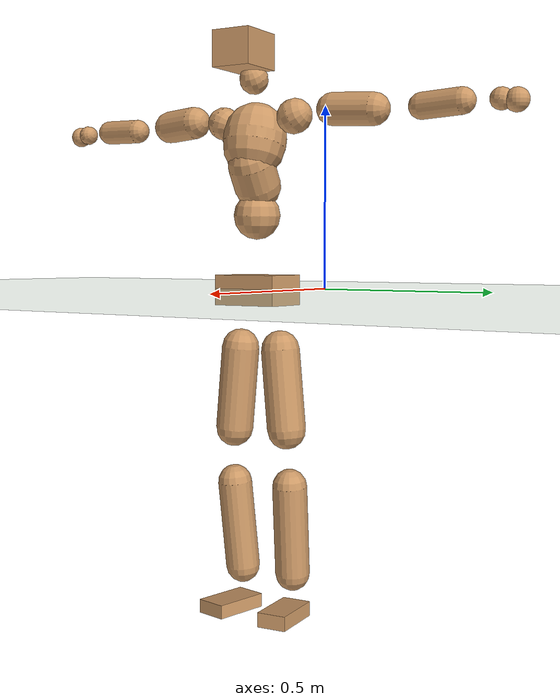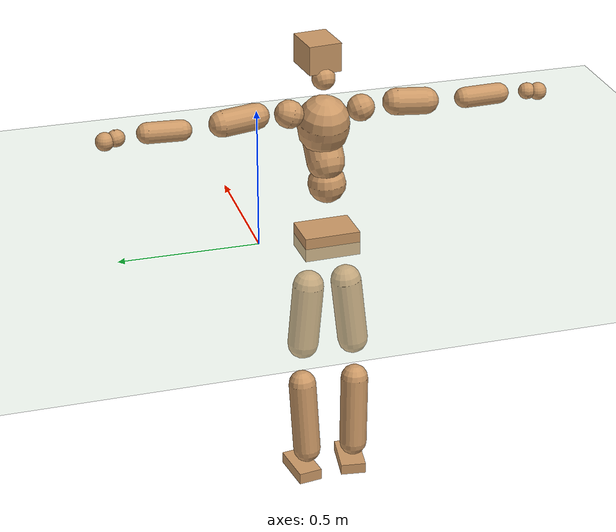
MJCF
<mujoco model="humanoid">
  <compiler coordinate="local" angle="radian"/>
  <default>
    <joint damping="0.0" armature="0.01" stiffness="0.0" limited="true"/>
    <geom conaffinity="1" condim="3" contype="7" margin="0.001" rgba="0.8 0.6 .4 1"/>
  </default>
  <asset>
    <texture type="skybox" builtin="gradient" rgb1=".4 .5 .6" rgb2="0 0 0" width="100" height="100"/>
    <texture builtin="flat" height="1278" mark="cross" markrgb="1 1 1" name="texgeom" random="0.01" rgb1="0.8 0.6 0.4" rgb2="0.8 0.6 0.4" type="cube" width="127"/>
    <texture builtin="checker" height="100" name="texplane" rgb1="0 0 0" rgb2="0.8 0.8 0.8" type="2d" width="100"/>
    <material name="MatPlane" reflectance="0.5" shininess="1" specular="1" texrepeat="60 60" texture="texplane"/>
    <material name="geom" texture="texgeom" texuniform="true"/>
  </asset>
  <worldbody>
    <light cutoff="100" diffuse="1 1 1" dir="-0 0 -1.3" directional="true" exponent="1" pos="0 0 1.3" specular=".1 .1 .1"/>
    <geom conaffinity="1" condim="3" name="floor" pos="0 0 0" rgba="0.8 0.9 0.8 1" size="100 100 .2" type="plane" material="MatPlane"/>
    <body name="Pelvis" pos="-0.0052 -0.2429 0.0075">
      <freejoint name="Pelvis"/>
      <geom type="box" contype="1" conaffinity="1" density="5359.375435" pos="-0.0082 -0.0002 -0.0140" size="0.0712 0.1001 0.0435" quat="0.9999 0.0000 0.0000 0.0142" name="Pelvis"/>
      <body name="L_Hip" pos="-0.022 0.0635 -0.0997">
        <joint name="L_Hip_x" type="hinge" pos="0 0 0" axis="1 0 0" stiffness="1600" damping="160" armature="0.02" range="-180.0000 180.0000"/>
        <joint name="L_Hip_y" type="hinge" pos="0 0 0" axis="0 1 0" stiffness="1600" damping="160" armature="0.02" range="-180.0000 180.0000"/>
        <joint name="L_Hip_z" type="hinge" pos="0 0 0" axis="0 0 1" stiffness="1600" damping="160" armature="0.02" range="-180.0000 180.0000"/>
        <geom type="capsule" contype="1" conaffinity="1" density="2040.816327" size="0.0557" fromto="-0.0003 0.0079 -0.0854 -0.0011 0.0293 -0.3168" name="L_Hip"/>
        <body name="L_Knee" pos="-0.0014 0.0372 -0.4021">
          <joint name="L_Knee_x" type="hinge" pos="0 0 0" axis="1 0 0" stiffness="1600" damping="160" armature="0.02" range="-180.0000 180.0000"/>
          <joint name="L_Knee_y" type="hinge" pos="0 0 0" axis="0 1 0" stiffness="1600" damping="160" armature="0.02" range="-180.0000 180.0000"/>
          <joint name="L_Knee_z" type="hinge" pos="0 0 0" axis="0 0 1" stiffness="1600" damping="160" armature="0.02" range="-180.0000 180.0000"/>
          <geom type="capsule" contype="1" conaffinity="1" density="1234.567901" size="0.0502" fromto="-0.0083 -0.0026 -0.0797 -0.0357 -0.0112 -0.3435" name="L_Knee"/>
          <body name="L_Ankle" pos="-0.044 -0.0139 -0.4232">
            <joint name="L_Ankle_x" type="hinge" pos="0 0 0" axis="1 0 0" stiffness="1600" damping="160" armature="0.02" range="-180.0000 180.0000"/>
            <joint name="L_Ankle_y" type="hinge" pos="0 0 0" axis="0 1 0" stiffness="1600" damping="160" armature="0.02" range="-180.0000 180.0000"/>
            <joint name="L_Ankle_z" type="hinge" pos="0 0 0" axis="0 0 1" stiffness="1600" damping="160" armature="0.02" range="-180.0000 180.0000"/>
            <geom type="box" contype="1" conaffinity="1" density="999.999965" pos="0.0591 0.0085 -0.0287" size="0.0814 0.0433 0.0212" quat="0.9974 0.0000 0.0000 0.0714" name="L_Ankle"/>
            <body name="L_Toe" pos="0.1182 0.017 -0.0574">
              <joint name="L_Toe_x" type="hinge" pos="0 0 0" axis="1 0 0" stiffness="1000" damping="100" armature="0.02" range="-180.0000 180.0000"/>
              <joint name="L_Toe_y" type="hinge" pos="0 0 0" axis="0 1 0" stiffness="1000" damping="100" armature="0.02" range="-180.0000 180.0000"/>
              <joint name="L_Toe_z" type="hinge" pos="0 0 0" axis="0 0 1" stiffness="1000" damping="100" armature="0.02" range="-180.0000 180.0000"/>
              <geom type="box" contype="1" conaffinity="1" density="8275256.921217" pos="0.0000 0.0000 0.0291" size="0.0009 0.0022 0.0011" quat="0.9969 0.0000 0.0000 0.0784" name="L_Toe"/>
            </body>
          </body>
        </body>
      </body>
      <body name="R_Hip" pos="-0.0166 -0.0602 -0.0996">
        <joint name="R_Hip_x" type="hinge" pos="0 0 0" axis="1 0 0" stiffness="1600" damping="160" armature="0.02" range="-180.0000 180.0000"/>
        <joint name="R_Hip_y" type="hinge" pos="0 0 0" axis="0 1 0" stiffness="1600" damping="160" armature="0.02" range="-180.0000 180.0000"/>
        <joint name="R_Hip_z" type="hinge" pos="0 0 0" axis="0 0 1" stiffness="1600" damping="160" armature="0.02" range="-180.0000 180.0000"/>
        <geom type="capsule" contype="1" conaffinity="1" density="2040.816327" size="0.0548" fromto="-0.0012 -0.0091 -0.0843 -0.0048 -0.0351 -0.3261" name="R_Hip"/>
        <body name="R_Knee" pos="-0.006 -0.0442 -0.4104">
          <joint name="R_Knee_x" type="hinge" pos="0 0 0" axis="1 0 0" stiffness="1600" damping="160" armature="0.02" range="-180.0000 180.0000"/>
          <joint name="R_Knee_y" type="hinge" pos="0 0 0" axis="0 1 0" stiffness="1600" damping="160" armature="0.02" range="-180.0000 180.0000"/>
          <joint name="R_Knee_z" type="hinge" pos="0 0 0" axis="0 0 1" stiffness="1600" damping="160" armature="0.02" range="-180.0000 180.0000"/>
          <geom type="capsule" contype="1" conaffinity="1" density="1234.567901" size="0.0503" fromto="-0.0074 0.0034 -0.0799 -0.0316 0.0144 -0.3391" name="R_Knee"/>
          <body name="R_Ankle" pos="-0.039 0.0179 -0.419">
            <joint name="R_Ankle_x" type="hinge" pos="0 0 0" axis="1 0 0" stiffness="1600" damping="160" armature="0.02" range="-180.0000 180.0000"/>
            <joint name="R_Ankle_y" type="hinge" pos="0 0 0" axis="0 1 0" stiffness="1600" damping="160" armature="0.02" range="-180.0000 180.0000"/>
            <joint name="R_Ankle_z" type="hinge" pos="0 0 0" axis="0 0 1" stiffness="1600" damping="160" armature="0.02" range="-180.0000 180.0000"/>
            <geom type="box" contype="1" conaffinity="1" density="1000.000003" pos="0.0606 -0.0083 -0.0250" size="0.0842 0.0461 0.0199" quat="0.9977 0.0000 0.0000 -0.0677" name="R_Ankle"/>
            <body name="R_Toe" pos="0.1213 -0.0165 -0.0501">
              <joint name="R_Toe_x" type="hinge" pos="0 0 0" axis="1 0 0" stiffness="1000" damping="100" armature="0.02" range="-180.0000 180.0000"/>
              <joint name="R_Toe_y" type="hinge" pos="0 0 0" axis="0 1 0" stiffness="1000" damping="100" armature="0.02" range="-180.0000 180.0000"/>
              <joint name="R_Toe_z" type="hinge" pos="0 0 0" axis="0 0 1" stiffness="1000" damping="100" armature="0.02" range="-180.0000 180.0000"/>
              <geom type="box" contype="1" conaffinity="1" density="8210939.375277" pos="0.0000 0.0000 0.0284" size="0.0008 0.0022 0.0012" quat="0.9983 0.0000 0.0000 -0.0586" name="R_Toe"/>
            </body>
          </body>
        </body>
      </body>
      <body name="Torso" pos="-0.0107 -0.0047 0.1151">
        <joint name="Torso_x" type="hinge" pos="0 0 0" axis="1 0 0" stiffness="2000" damping="200" armature="0.02" range="-180.0000 180.0000"/>
        <joint name="Torso_y" type="hinge" pos="0 0 0" axis="0 1 0" stiffness="2000" damping="200" armature="0.02" range="-180.0000 180.0000"/>
        <joint name="Torso_z" type="hinge" pos="0 0 0" axis="0 0 1" stiffness="2000" damping="200" armature="0.02" range="-180.0000 180.0000"/>
        <geom type="capsule" contype="1" conaffinity="1" density="2040.816327" size="0.0676" fromto="0.0026 0.0037 0.0837 0.0027 0.0038 0.0857" name="Torso"/>
        <body name="Spine" pos="0.0053 0.0075 0.1695">
          <joint name="Spine_x" type="hinge" pos="0 0 0" axis="1 0 0" stiffness="2000" damping="200" armature="0.02" range="-180.0000 180.0000"/>
          <joint name="Spine_y" type="hinge" pos="0 0 0" axis="0 1 0" stiffness="2000" damping="200" armature="0.02" range="-180.0000 180.0000"/>
          <joint name="Spine_z" type="hinge" pos="0 0 0" axis="0 0 1" stiffness="2000" damping="200" armature="0.02" range="-180.0000 180.0000"/>
          <geom type="capsule" contype="1" conaffinity="1" density="2040.816327" size="0.0672" fromto="0.0346 0.0035 0.0575 -0.0006 -0.0001 -0.0010" name="Spine"/>
          <body name="Chest" pos="0.034 0.0035 0.0565">
            <joint name="Chest_x" type="hinge" pos="0 0 0" axis="1 0 0" stiffness="2000" damping="200" armature="0.02" range="-180.0000 180.0000"/>
            <joint name="Chest_y" type="hinge" pos="0 0 0" axis="0 1 0" stiffness="2000" damping="200" armature="0.02" range="-180.0000 180.0000"/>
            <joint name="Chest_z" type="hinge" pos="0 0 0" axis="0 0 1" stiffness="2000" damping="200" armature="0.02" range="-180.0000 180.0000"/>
            <geom type="capsule" contype="1" conaffinity="1" density="2040.816327" size="0.0906" fromto="-0.0207 -0.0006 0.0882 -0.0134 -0.0004 0.0571" name="Chest"/>
            <body name="Neck" pos="-0.0405 -0.0031 0.2071">
              <joint name="Neck_x" type="hinge" pos="0 0 0" axis="1 0 0" stiffness="1000" damping="100" armature="0.02" range="-180.0000 180.0000"/>
              <joint name="Neck_y" type="hinge" pos="0 0 0" axis="0 1 0" stiffness="1000" damping="100" armature="0.02" range="-180.0000 180.0000"/>
              <joint name="Neck_z" type="hinge" pos="0 0 0" axis="0 0 1" stiffness="1000" damping="100" armature="0.02" range="-180.0000 180.0000"/>
              <geom type="capsule" contype="1" conaffinity="1" density="1000" size="0.0413" fromto="0.0259 0.0018 0.0350 0.0271 0.0019 0.0366" name="Neck"/>
              <body name="Head" pos="0.0531 0.0037 0.0715">
                <joint name="Head_x" type="hinge" pos="0 0 0" axis="1 0 0" stiffness="1000" damping="100" armature="0.02" range="-180.0000 180.0000"/>
                <joint name="Head_y" type="hinge" pos="0 0 0" axis="0 1 0" stiffness="1000" damping="100" armature="0.02" range="-180.0000 180.0000"/>
                <joint name="Head_z" type="hinge" pos="0 0 0" axis="0 0 1" stiffness="1000" damping="100" armature="0.02" range="-180.0000 180.0000"/>
                <geom type="box" contype="1" conaffinity="1" density="2249.999894" pos="0.0275 0.0029 0.0368" size="0.0726 0.0585 0.0508" quat="0.9987 0.0000 0.0000 0.0518" name="Head"/>
              </body>
            </body>
            <body name="L_Thorax" pos="-0.0288 0.0815 0.1163">
              <joint name="L_Thorax_x" type="hinge" pos="0 0 0" axis="1 0 0" stiffness="1000" damping="100" armature="0.02" range="-180.0000 180.0000"/>
              <joint name="L_Thorax_y" type="hinge" pos="0 0 0" axis="0 1 0" stiffness="1000" damping="100" armature="0.02" range="-180.0000 180.0000"/>
              <joint name="L_Thorax_z" type="hinge" pos="0 0 0" axis="0 0 1" stiffness="1000" damping="100" armature="0.02" range="-180.0000 180.0000"/>
              <geom type="capsule" contype="1" conaffinity="1" density="1000" size="0.0492" fromto="-0.0046 0.0459 0.0171 -0.0043 0.0424 0.0158" name="L_Thorax"/>
              <body name="L_Shoulder" pos="-0.0089 0.0883 0.0328">
                <joint name="L_Shoulder_x" type="hinge" pos="0 0 0" axis="1 0 0" stiffness="1000" damping="100" armature="0.02" range="-720.0000 720.0000"/>
                <joint name="L_Shoulder_y" type="hinge" pos="0 0 0" axis="0 1 0" stiffness="1000" damping="100" armature="0.02" range="-720.0000 720.0000"/>
                <joint name="L_Shoulder_z" type="hinge" pos="0 0 0" axis="0 0 1" stiffness="1000" damping="100" armature="0.02" range="-720.0000 720.0000"/>
                <geom type="capsule" contype="1" conaffinity="1" density="1000" size="0.0458" fromto="-0.0088 0.0751 -0.0045 -0.0231 0.1960 -0.0117" name="L_Shoulder"/>
                <body name="L_Elbow" pos="-0.0319 0.2711 -0.0163">
                  <joint name="L_Elbow_x" type="hinge" pos="0 0 0" axis="1 0 0" stiffness="1000" damping="100" armature="0.02" range="-720.0000 720.0000"/>
                  <joint name="L_Elbow_y" type="hinge" pos="0 0 0" axis="0 1 0" stiffness="1000" damping="100" armature="0.02" range="-720.0000 720.0000"/>
                  <joint name="L_Elbow_z" type="hinge" pos="0 0 0" axis="0 0 1" stiffness="1000" damping="100" armature="0.02" range="-720.0000 720.0000"/>
                  <geom type="capsule" contype="1" conaffinity="1" density="1000" size="0.036" fromto="-0.0004 0.0660 0.0024 -0.0011 0.1821 0.0067" name="L_Elbow"/>
                  <body name="L_Wrist" pos="-0.0016 0.2481 0.0091">
                    <joint name="L_Wrist_x" type="hinge" pos="0 0 0" axis="1 0 0" stiffness="600" damping="60" armature="0.02" range="-180.0000 180.0000"/>
                    <joint name="L_Wrist_y" type="hinge" pos="0 0 0" axis="0 1 0" stiffness="600" damping="60" armature="0.02" range="-180.0000 180.0000"/>
                    <joint name="L_Wrist_z" type="hinge" pos="0 0 0" axis="0 0 1" stiffness="600" damping="60" armature="0.02" range="-180.0000 180.0000"/>
                    <geom type="capsule" contype="1" conaffinity="1" density="1000" size="0.0294" fromto="-0.0064 0.0383 -0.0047 -0.0068 0.0403 -0.0050" name="L_Wrist"/>
                    <body name="L_Hand" pos="-0.0132 0.0786 -0.0097">
                      <joint name="L_Hand_x" type="hinge" pos="0 0 0" axis="1 0 0" stiffness="600" damping="60" armature="0.02" range="-180.0000 180.0000"/>
                      <joint name="L_Hand_y" type="hinge" pos="0 0 0" axis="0 1 0" stiffness="600" damping="60" armature="0.02" range="-180.0000 180.0000"/>
                      <joint name="L_Hand_z" type="hinge" pos="0 0 0" axis="0 0 1" stiffness="600" damping="60" armature="0.02" range="-180.0000 180.0000"/>
                      <geom type="sphere" contype="1" conaffinity="1" density="1000" size="0.0317" pos="0.0000 0.0000 0.0000" name="L_Hand"/>
                    </body>
                  </body>
                </body>
              </body>
            </body>
            <body name="R_Thorax" pos="-0.0329 -0.0813 0.1125">
              <joint name="R_Thorax_x" type="hinge" pos="0 0 0" axis="1 0 0" stiffness="1000" damping="100" armature="0.02" range="-180.0000 180.0000"/>
              <joint name="R_Thorax_y" type="hinge" pos="0 0 0" axis="0 1 0" stiffness="1000" damping="100" armature="0.02" range="-180.0000 180.0000"/>
              <joint name="R_Thorax_z" type="hinge" pos="0 0 0" axis="0 0 1" stiffness="1000" damping="100" armature="0.02" range="-180.0000 180.0000"/>
              <geom type="capsule" contype="1" conaffinity="1" density="1000" size="0.0475" fromto="-0.0052 -0.0453 0.0162 -0.0054 -0.0471 0.0168" name="R_Thorax"/>
              <body name="R_Shoulder" pos="-0.0106 -0.0924 0.033">
                <joint name="R_Shoulder_x" type="hinge" pos="0 0 0" axis="1 0 0" stiffness="1000" damping="100" armature="0.02" range="-720.0000 720.0000"/>
                <joint name="R_Shoulder_y" type="hinge" pos="0 0 0" axis="0 1 0" stiffness="1000" damping="100" armature="0.02" range="-720.0000 720.0000"/>
                <joint name="R_Shoulder_z" type="hinge" pos="0 0 0" axis="0 0 1" stiffness="1000" damping="100" armature="0.02" range="-720.0000 720.0000"/>
                <geom type="capsule" contype="1" conaffinity="1" density="1000" size="0.0474" fromto="-0.0054 -0.0771 -0.0044 -0.0127 -0.1793 -0.0102" name="R_Shoulder"/>
                <body name="R_Elbow" pos="-0.0181 -0.2564 -0.0146">
                  <joint name="R_Elbow_x" type="hinge" pos="0 0 0" axis="1 0 0" stiffness="1000" damping="100" armature="0.02" range="-720.0000 720.0000"/>
                  <joint name="R_Elbow_y" type="hinge" pos="0 0 0" axis="0 1 0" stiffness="1000" damping="100" armature="0.02" range="-720.0000 720.0000"/>
                  <joint name="R_Elbow_z" type="hinge" pos="0 0 0" axis="0 0 1" stiffness="1000" damping="100" armature="0.02" range="-720.0000 720.0000"/>
                  <geom type="capsule" contype="1" conaffinity="1" density="1000" size="0.0363" fromto="-0.0016 -0.0662 0.0020 -0.0045 -0.1879 0.0057" name="R_Elbow"/>
                  <body name="R_Wrist" pos="-0.0061 -0.2541 0.0078">
                    <joint name="R_Wrist_x" type="hinge" pos="0 0 0" axis="1 0 0" stiffness="600" damping="60" armature="0.02" range="-180.0000 180.0000"/>
                    <joint name="R_Wrist_y" type="hinge" pos="0 0 0" axis="0 1 0" stiffness="600" damping="60" armature="0.02" range="-180.0000 180.0000"/>
                    <joint name="R_Wrist_z" type="hinge" pos="0 0 0" axis="0 0 1" stiffness="600" damping="60" armature="0.02" range="-180.0000 180.0000"/>
                    <geom type="capsule" contype="1" conaffinity="1" density="1000" size="0.0292" fromto="-0.0047 -0.0375 -0.0033 -0.0050 -0.0395 -0.0034" name="R_Wrist"/>
                    <body name="R_Hand" pos="-0.0097 -0.077 -0.0067">
                      <joint name="R_Hand_x" type="hinge" pos="0 0 0" axis="1 0 0" stiffness="600" damping="60" armature="0.02" range="-180.0000 180.0000"/>
                      <joint name="R_Hand_y" type="hinge" pos="0 0 0" axis="0 1 0" stiffness="600" damping="60" armature="0.02" range="-180.0000 180.0000"/>
                      <joint name="R_Hand_z" type="hinge" pos="0 0 0" axis="0 0 1" stiffness="600" damping="60" armature="0.02" range="-180.0000 180.0000"/>
                      <geom type="sphere" contype="1" conaffinity="1" density="1000" size="0.0309" pos="0.0000 0.0000 0.0000" name="R_Hand"/>
                    </body>
                  </body>
                </body>
              </body>
            </body>
          </body>
        </body>
      </body>
    </body>
  </worldbody>
  <actuator>
    <motor name="L_Hip_x" joint="L_Hip_x" gear="500"/>
    <motor name="L_Hip_y" joint="L_Hip_y" gear="500"/>
    <motor name="L_Hip_z" joint="L_Hip_z" gear="500"/>
    <motor name="L_Knee_x" joint="L_Knee_x" gear="500"/>
    <motor name="L_Knee_y" joint="L_Knee_y" gear="500"/>
    <motor name="L_Knee_z" joint="L_Knee_z" gear="500"/>
    <motor name="L_Ankle_x" joint="L_Ankle_x" gear="500"/>
    <motor name="L_Ankle_y" joint="L_Ankle_y" gear="500"/>
    <motor name="L_Ankle_z" joint="L_Ankle_z" gear="500"/>
    <motor name="L_Toe_x" joint="L_Toe_x" gear="500"/>
    <motor name="L_Toe_y" joint="L_Toe_y" gear="500"/>
    <motor name="L_Toe_z" joint="L_Toe_z" gear="500"/>
    <motor name="R_Hip_x" joint="R_Hip_x" gear="500"/>
    <motor name="R_Hip_y" joint="R_Hip_y" gear="500"/>
    <motor name="R_Hip_z" joint="R_Hip_z" gear="500"/>
    <motor name="R_Knee_x" joint="R_Knee_x" gear="500"/>
    <motor name="R_Knee_y" joint="R_Knee_y" gear="500"/>
    <motor name="R_Knee_z" joint="R_Knee_z" gear="500"/>
    <motor name="R_Ankle_x" joint="R_Ankle_x" gear="500"/>
    <motor name="R_Ankle_y" joint="R_Ankle_y" gear="500"/>
    <motor name="R_Ankle_z" joint="R_Ankle_z" gear="500"/>
    <motor name="R_Toe_x" joint="R_Toe_x" gear="500"/>
    <motor name="R_Toe_y" joint="R_Toe_y" gear="500"/>
    <motor name="R_Toe_z" joint="R_Toe_z" gear="500"/>
    <motor name="Torso_x" joint="Torso_x" gear="500"/>
    <motor name="Torso_y" joint="Torso_y" gear="500"/>
    <motor name="Torso_z" joint="Torso_z" gear="500"/>
    <motor name="Spine_x" joint="Spine_x" gear="500"/>
    <motor name="Spine_y" joint="Spine_y" gear="500"/>
    <motor name="Spine_z" joint="Spine_z" gear="500"/>
    <motor name="Chest_x" joint="Chest_x" gear="500"/>
    <motor name="Chest_y" joint="Chest_y" gear="500"/>
    <motor name="Chest_z" joint="Chest_z" gear="500"/>
    <motor name="Neck_x" joint="Neck_x" gear="500"/>
    <motor name="Neck_y" joint="Neck_y" gear="500"/>
    <motor name="Neck_z" joint="Neck_z" gear="500"/>
    <motor name="Head_x" joint="Head_x" gear="500"/>
    <motor name="Head_y" joint="Head_y" gear="500"/>
    <motor name="Head_z" joint="Head_z" gear="500"/>
    <motor name="L_Thorax_x" joint="L_Thorax_x" gear="500"/>
    <motor name="L_Thorax_y" joint="L_Thorax_y" gear="500"/>
    <motor name="L_Thorax_z" joint="L_Thorax_z" gear="500"/>
    <motor name="L_Shoulder_x" joint="L_Shoulder_x" gear="500"/>
    <motor name="L_Shoulder_y" joint="L_Shoulder_y" gear="500"/>
    <motor name="L_Shoulder_z" joint="L_Shoulder_z" gear="500"/>
    <motor name="L_Elbow_x" joint="L_Elbow_x" gear="500"/>
    <motor name="L_Elbow_y" joint="L_Elbow_y" gear="500"/>
    <motor name="L_Elbow_z" joint="L_Elbow_z" gear="500"/>
    <motor name="L_Wrist_x" joint="L_Wrist_x" gear="500"/>
    <motor name="L_Wrist_y" joint="L_Wrist_y" gear="500"/>
    <motor name="L_Wrist_z" joint="L_Wrist_z" gear="500"/>
    <motor name="L_Hand_x" joint="L_Hand_x" gear="500"/>
    <motor name="L_Hand_y" joint="L_Hand_y" gear="500"/>
    <motor name="L_Hand_z" joint="L_Hand_z" gear="500"/>
    <motor name="R_Thorax_x" joint="R_Thorax_x" gear="500"/>
    <motor name="R_Thorax_y" joint="R_Thorax_y" gear="500"/>
    <motor name="R_Thorax_z" joint="R_Thorax_z" gear="500"/>
    <motor name="R_Shoulder_x" joint="R_Shoulder_x" gear="500"/>
    <motor name="R_Shoulder_y" joint="R_Shoulder_y" gear="500"/>
    <motor name="R_Shoulder_z" joint="R_Shoulder_z" gear="500"/>
    <motor name="R_Elbow_x" joint="R_Elbow_x" gear="500"/>
    <motor name="R_Elbow_y" joint="R_Elbow_y" gear="500"/>
    <motor name="R_Elbow_z" joint="R_Elbow_z" gear="500"/>
    <motor name="R_Wrist_x" joint="R_Wrist_x" gear="500"/>
    <motor name="R_Wrist_y" joint="R_Wrist_y" gear="500"/>
    <motor name="R_Wrist_z" joint="R_Wrist_z" gear="500"/>
    <motor name="R_Hand_x" joint="R_Hand_x" gear="500"/>
    <motor name="R_Hand_y" joint="R_Hand_y" gear="500"/>
    <motor name="R_Hand_z" joint="R_Hand_z" gear="500"/>
  </actuator>
  <contact>
    <exclude body1="Torso" body2="Chest"/>
    <exclude body1="Head" body2="Chest"/>
    <exclude body1="R_Knee" body2="R_Toe"/>
    <exclude body1="R_Knee" body2="L_Ankle"/>
    <exclude body1="R_Knee" body2="L_Toe"/>
    <exclude body1="L_Knee" body2="L_Toe"/>
    <exclude body1="L_Knee" body2="R_Ankle"/>
    <exclude body1="L_Knee" body2="R_Toe"/>
    <exclude body1="L_Shoulder" body2="Chest"/>
    <exclude body1="R_Shoulder" body2="Chest"/>
  </contact>
  <sensor/>
  <size njmax="700" nconmax="700"/>
</mujoco>
